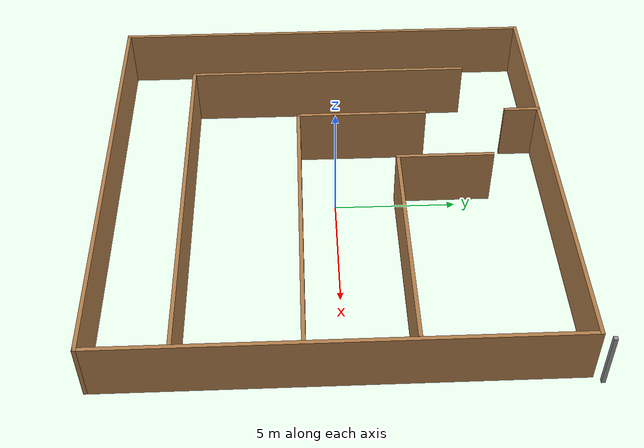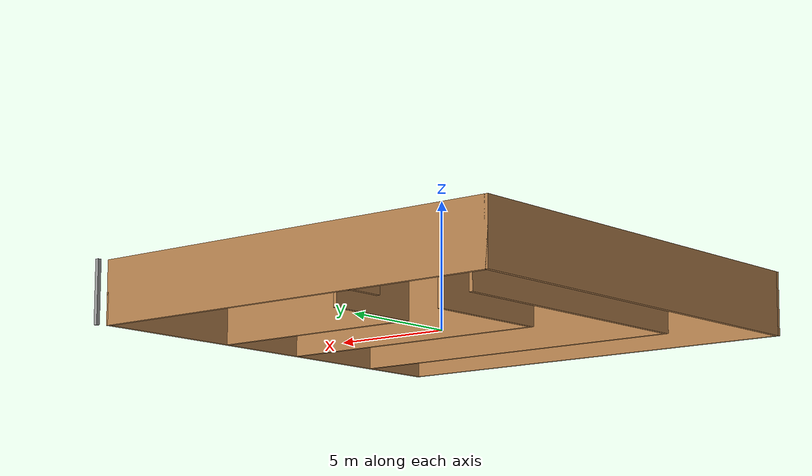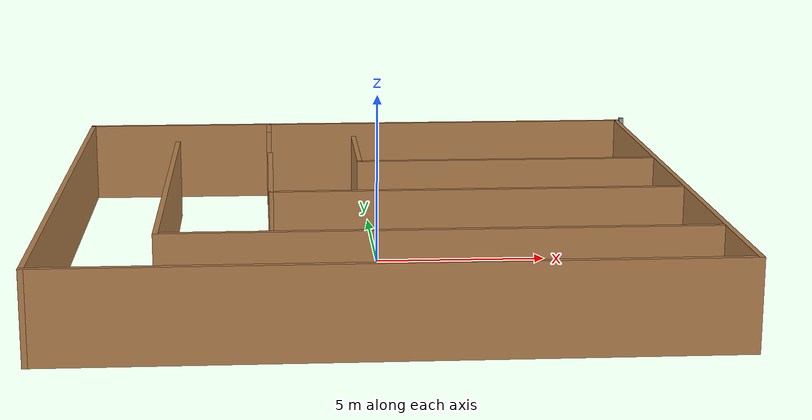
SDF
<?xml version='1.0'?>
<sdf version='1.7'>
  <model name='maze'>
    <link name='Wall_28'>
      <pose>8.87242 -0.195571 0 0 0 -1.5708</pose>
      <self_collide>0</self_collide>
      <enable_wind>0</enable_wind>
      <kinematic>0</kinematic>
      <visual name='Wall_28_Visual'>
        <pose>0 0 1.25 0 -0 0</pose>
        <geometry>
          <box>
            <size>18.15 0.15 2.5</size>
          </box>
        </geometry>
        <material>
          <script>
            <uri>file://media/materials/scripts/gazebo.material</uri>
            <name>Gazebo/Wood</name>
          </script>
          <ambient>1 1 1 1</ambient>
          <shader type='pixel'/>
        </material>
        <meta>
          <layer>0</layer>
        </meta>
        <transparency>0</transparency>
        <cast_shadows>1</cast_shadows>
      </visual>
      <collision name='Wall_28_Collision'>
        <laser_retro>0</laser_retro>
        <max_contacts>10</max_contacts>
        <pose>0 0 1.25 0 -0 0</pose>
        <geometry>
          <box>
            <size>18.15 0.15 2.5</size>
          </box>
        </geometry>
        <surface>
          <friction>
            <ode>
              <mu>1</mu>
              <mu2>1</mu2>
              <fdir1>0 0 0</fdir1>
              <slip1>0</slip1>
              <slip2>0</slip2>
            </ode>
            <torsional>
              <coefficient>1</coefficient>
              <patch_radius>0</patch_radius>
              <surface_radius>0</surface_radius>
              <use_patch_radius>1</use_patch_radius>
              <ode>
                <slip>0</slip>
              </ode>
            </torsional>
          </friction>
          <bounce>
            <restitution_coefficient>0</restitution_coefficient>
            <threshold>1e+06</threshold>
          </bounce>
          <contact>
            <collide_without_contact>0</collide_without_contact>
            <collide_without_contact_bitmask>1</collide_without_contact_bitmask>
            <collide_bitmask>1</collide_bitmask>
            <ode>
              <soft_cfm>0</soft_cfm>
              <soft_erp>0.2</soft_erp>
              <kp>1e+13</kp>
              <kd>1</kd>
              <max_vel>0.01</max_vel>
              <min_depth>0</min_depth>
            </ode>
            <bullet>
              <split_impulse>1</split_impulse>
              <split_impulse_penetration_threshold>-0.01</split_impulse_penetration_threshold>
              <soft_cfm>0</soft_cfm>
              <soft_erp>0.2</soft_erp>
              <kp>1e+13</kp>
              <kd>1</kd>
            </bullet>
          </contact>
        </surface>
      </collision>
    </link>
    <link name='Wall_30'>
      <pose>-0.127585 -9.19557 0 0 -0 3.14159</pose>
      <self_collide>0</self_collide>
      <enable_wind>0</enable_wind>
      <kinematic>0</kinematic>
      <visual name='Wall_30_Visual'>
        <pose>0 0 1.25 0 -0 0</pose>
        <geometry>
          <box>
            <size>18.15 0.15 2.5</size>
          </box>
        </geometry>
        <material>
          <script>
            <uri>file://media/materials/scripts/gazebo.material</uri>
            <name>Gazebo/Wood</name>
          </script>
          <ambient>1 1 1 1</ambient>
          <shader type='pixel'/>
        </material>
        <meta>
          <layer>0</layer>
        </meta>
        <transparency>0</transparency>
        <cast_shadows>1</cast_shadows>
      </visual>
      <collision name='Wall_30_Collision'>
        <laser_retro>0</laser_retro>
        <max_contacts>10</max_contacts>
        <pose>0 0 1.25 0 -0 0</pose>
        <geometry>
          <box>
            <size>18.15 0.15 2.5</size>
          </box>
        </geometry>
        <surface>
          <friction>
            <ode>
              <mu>1</mu>
              <mu2>1</mu2>
              <fdir1>0 0 0</fdir1>
              <slip1>0</slip1>
              <slip2>0</slip2>
            </ode>
            <torsional>
              <coefficient>1</coefficient>
              <patch_radius>0</patch_radius>
              <surface_radius>0</surface_radius>
              <use_patch_radius>1</use_patch_radius>
              <ode>
                <slip>0</slip>
              </ode>
            </torsional>
          </friction>
          <bounce>
            <restitution_coefficient>0</restitution_coefficient>
            <threshold>1e+06</threshold>
          </bounce>
          <contact>
            <collide_without_contact>0</collide_without_contact>
            <collide_without_contact_bitmask>1</collide_without_contact_bitmask>
            <collide_bitmask>1</collide_bitmask>
            <ode>
              <soft_cfm>0</soft_cfm>
              <soft_erp>0.2</soft_erp>
              <kp>1e+13</kp>
              <kd>1</kd>
              <max_vel>0.01</max_vel>
              <min_depth>0</min_depth>
            </ode>
            <bullet>
              <split_impulse>1</split_impulse>
              <split_impulse_penetration_threshold>-0.01</split_impulse_penetration_threshold>
              <soft_cfm>0</soft_cfm>
              <soft_erp>0.2</soft_erp>
              <kp>1e+13</kp>
              <kd>1</kd>
            </bullet>
          </contact>
        </surface>
      </collision>
    </link>
    <link name='Wall_31'>
      <pose>-9.12758 -0.195571 0 0 -0 1.5708</pose>
      <self_collide>0</self_collide>
      <enable_wind>0</enable_wind>
      <kinematic>0</kinematic>
      <visual name='Wall_31_Visual'>
        <pose>0 0 1.25 0 -0 0</pose>
        <geometry>
          <box>
            <size>18.15 0.15 2.5</size>
          </box>
        </geometry>
        <material>
          <script>
            <uri>file://media/materials/scripts/gazebo.material</uri>
            <name>Gazebo/Wood</name>
          </script>
          <ambient>1 1 1 1</ambient>
          <shader type='pixel'/>
        </material>
        <meta>
          <layer>0</layer>
        </meta>
        <transparency>0</transparency>
        <cast_shadows>1</cast_shadows>
      </visual>
      <collision name='Wall_31_Collision'>
        <laser_retro>0</laser_retro>
        <max_contacts>10</max_contacts>
        <pose>0 0 1.25 0 -0 0</pose>
        <geometry>
          <box>
            <size>18.15 0.15 2.5</size>
          </box>
        </geometry>
        <surface>
          <friction>
            <ode>
              <mu>1</mu>
              <mu2>1</mu2>
              <fdir1>0 0 0</fdir1>
              <slip1>0</slip1>
              <slip2>0</slip2>
            </ode>
            <torsional>
              <coefficient>1</coefficient>
              <patch_radius>0</patch_radius>
              <surface_radius>0</surface_radius>
              <use_patch_radius>1</use_patch_radius>
              <ode>
                <slip>0</slip>
              </ode>
            </torsional>
          </friction>
          <bounce>
            <restitution_coefficient>0</restitution_coefficient>
            <threshold>1e+06</threshold>
          </bounce>
          <contact>
            <collide_without_contact>0</collide_without_contact>
            <collide_without_contact_bitmask>1</collide_without_contact_bitmask>
            <collide_bitmask>1</collide_bitmask>
            <ode>
              <soft_cfm>0</soft_cfm>
              <soft_erp>0.2</soft_erp>
              <kp>1e+13</kp>
              <kd>1</kd>
              <max_vel>0.01</max_vel>
              <min_depth>0</min_depth>
            </ode>
            <bullet>
              <split_impulse>1</split_impulse>
              <split_impulse_penetration_threshold>-0.01</split_impulse_penetration_threshold>
              <soft_cfm>0</soft_cfm>
              <soft_erp>0.2</soft_erp>
              <kp>1e+13</kp>
              <kd>1</kd>
            </bullet>
          </contact>
        </surface>
      </collision>
    </link>
    <link name='Wall_34'>
      <pose>9.12759 9.19557 0 0 -0 0</pose>
      <self_collide>0</self_collide>
      <enable_wind>0</enable_wind>
      <kinematic>0</kinematic>
      <visual name='Wall_34_Visual'>
        <pose>0 0 1.25 0 -0 0</pose>
        <geometry>
          <box>
            <size>0.15 0.15 2.5</size>
          </box>
        </geometry>
        <material>
          <script>
            <uri>file://media/materials/scripts/gazebo.material</uri>
            <name>Gazebo/Grey</name>
          </script>
          <ambient>1 1 1 1</ambient>
          <shader type='pixel'/>
        </material>
        <meta>
          <layer>0</layer>
        </meta>
        <transparency>0</transparency>
        <cast_shadows>1</cast_shadows>
      </visual>
      <collision name='Wall_34_Collision'>
        <laser_retro>0</laser_retro>
        <max_contacts>10</max_contacts>
        <pose>0 0 1.25 0 -0 0</pose>
        <geometry>
          <box>
            <size>0.15 0.15 2.5</size>
          </box>
        </geometry>
        <surface>
          <friction>
            <ode>
              <mu>1</mu>
              <mu2>1</mu2>
              <fdir1>0 0 0</fdir1>
              <slip1>0</slip1>
              <slip2>0</slip2>
            </ode>
            <torsional>
              <coefficient>1</coefficient>
              <patch_radius>0</patch_radius>
              <surface_radius>0</surface_radius>
              <use_patch_radius>1</use_patch_radius>
              <ode>
                <slip>0</slip>
              </ode>
            </torsional>
          </friction>
          <bounce>
            <restitution_coefficient>0</restitution_coefficient>
            <threshold>1e+06</threshold>
          </bounce>
          <contact>
            <collide_without_contact>0</collide_without_contact>
            <collide_without_contact_bitmask>1</collide_without_contact_bitmask>
            <collide_bitmask>1</collide_bitmask>
            <ode>
              <soft_cfm>0</soft_cfm>
              <soft_erp>0.2</soft_erp>
              <kp>1e+13</kp>
              <kd>1</kd>
              <max_vel>0.01</max_vel>
              <min_depth>0</min_depth>
            </ode>
            <bullet>
              <split_impulse>1</split_impulse>
              <split_impulse_penetration_threshold>-0.01</split_impulse_penetration_threshold>
              <soft_cfm>0</soft_cfm>
              <soft_erp>0.2</soft_erp>
              <kp>1e+13</kp>
              <kd>1</kd>
            </bullet>
          </contact>
        </surface>
      </collision>
    </link>
    <link name='Wall_39'>
      <pose>-0.127585 8.80443 0 0 -0 0</pose>
      <self_collide>0</self_collide>
      <enable_wind>0</enable_wind>
      <kinematic>0</kinematic>
      <visual name='Wall_39_Visual'>
        <pose>0 0 1.25 0 -0 0</pose>
        <geometry>
          <box>
            <size>18.15 0.15 2.5</size>
          </box>
        </geometry>
        <material>
          <script>
            <uri>file://media/materials/scripts/gazebo.material</uri>
            <name>Gazebo/Wood</name>
          </script>
          <ambient>1 1 1 1</ambient>
          <shader type='pixel'/>
        </material>
        <meta>
          <layer>0</layer>
        </meta>
        <transparency>0</transparency>
        <cast_shadows>1</cast_shadows>
      </visual>
      <collision name='Wall_39_Collision'>
        <laser_retro>0</laser_retro>
        <max_contacts>10</max_contacts>
        <pose>0 0 1.25 0 -0 0</pose>
        <geometry>
          <box>
            <size>18.15 0.15 2.5</size>
          </box>
        </geometry>
        <surface>
          <friction>
            <ode>
              <mu>1</mu>
              <mu2>1</mu2>
              <fdir1>0 0 0</fdir1>
              <slip1>0</slip1>
              <slip2>0</slip2>
            </ode>
            <torsional>
              <coefficient>1</coefficient>
              <patch_radius>0</patch_radius>
              <surface_radius>0</surface_radius>
              <use_patch_radius>1</use_patch_radius>
              <ode>
                <slip>0</slip>
              </ode>
            </torsional>
          </friction>
          <bounce>
            <restitution_coefficient>0</restitution_coefficient>
            <threshold>1e+06</threshold>
          </bounce>
          <contact>
            <collide_without_contact>0</collide_without_contact>
            <collide_without_contact_bitmask>1</collide_without_contact_bitmask>
            <collide_bitmask>1</collide_bitmask>
            <ode>
              <soft_cfm>0</soft_cfm>
              <soft_erp>0.2</soft_erp>
              <kp>1e+13</kp>
              <kd>1</kd>
              <max_vel>0.01</max_vel>
              <min_depth>0</min_depth>
            </ode>
            <bullet>
              <split_impulse>1</split_impulse>
              <split_impulse_penetration_threshold>-0.01</split_impulse_penetration_threshold>
              <soft_cfm>0</soft_cfm>
              <soft_erp>0.2</soft_erp>
              <kp>1e+13</kp>
              <kd>1</kd>
            </bullet>
          </contact>
        </surface>
      </collision>
    </link>
    <link name='Wall_42'>
      <pose>-0.381293 4.4894 0 0 0 -1.5708</pose>
      <self_collide>0</self_collide>
      <enable_wind>0</enable_wind>
      <kinematic>0</kinematic>
      <visual name='Wall_42_Visual'>
        <pose>0 0 1.25 0 -0 0</pose>
        <geometry>
          <box>
            <size>4 0.15 2.5</size>
          </box>
        </geometry>
        <material>
          <script>
            <uri>file://media/materials/scripts/gazebo.material</uri>
            <name>Gazebo/Wood</name>
          </script>
          <ambient>1 1 1 1</ambient>
          <shader type='pixel'/>
        </material>
        <meta>
          <layer>0</layer>
        </meta>
        <transparency>0</transparency>
        <cast_shadows>1</cast_shadows>
      </visual>
      <collision name='Wall_42_Collision'>
        <laser_retro>0</laser_retro>
        <max_contacts>10</max_contacts>
        <pose>0 0 1.25 0 -0 0</pose>
        <geometry>
          <box>
            <size>4 0.15 2.5</size>
          </box>
        </geometry>
        <surface>
          <friction>
            <ode>
              <mu>1</mu>
              <mu2>1</mu2>
              <fdir1>0 0 0</fdir1>
              <slip1>0</slip1>
              <slip2>0</slip2>
            </ode>
            <torsional>
              <coefficient>1</coefficient>
              <patch_radius>0</patch_radius>
              <surface_radius>0</surface_radius>
              <use_patch_radius>1</use_patch_radius>
              <ode>
                <slip>0</slip>
              </ode>
            </torsional>
          </friction>
          <bounce>
            <restitution_coefficient>0</restitution_coefficient>
            <threshold>1e+06</threshold>
          </bounce>
          <contact>
            <collide_without_contact>0</collide_without_contact>
            <collide_without_contact_bitmask>1</collide_without_contact_bitmask>
            <collide_bitmask>1</collide_bitmask>
            <ode>
              <soft_cfm>0</soft_cfm>
              <soft_erp>0.2</soft_erp>
              <kp>1e+13</kp>
              <kd>1</kd>
              <max_vel>0.01</max_vel>
              <min_depth>0</min_depth>
            </ode>
            <bullet>
              <split_impulse>1</split_impulse>
              <split_impulse_penetration_threshold>-0.01</split_impulse_penetration_threshold>
              <soft_cfm>0</soft_cfm>
              <soft_erp>0.2</soft_erp>
              <kp>1e+13</kp>
              <kd>1</kd>
            </bullet>
          </contact>
        </surface>
      </collision>
    </link>
    <link name='Wall_43'>
      <pose>4.16871 2.5644 0 0 -0 0</pose>
      <self_collide>0</self_collide>
      <enable_wind>0</enable_wind>
      <kinematic>0</kinematic>
      <visual name='Wall_43_Visual'>
        <pose>0 0 1.25 0 -0 0</pose>
        <geometry>
          <box>
            <size>9.25 0.15 2.5</size>
          </box>
        </geometry>
        <material>
          <script>
            <uri>file://media/materials/scripts/gazebo.material</uri>
            <name>Gazebo/Wood</name>
          </script>
          <ambient>1 1 1 1</ambient>
          <shader type='pixel'/>
        </material>
        <meta>
          <layer>0</layer>
        </meta>
        <transparency>0</transparency>
        <cast_shadows>1</cast_shadows>
      </visual>
      <collision name='Wall_43_Collision'>
        <laser_retro>0</laser_retro>
        <max_contacts>10</max_contacts>
        <pose>0 0 1.25 0 -0 0</pose>
        <geometry>
          <box>
            <size>9.25 0.15 2.5</size>
          </box>
        </geometry>
        <surface>
          <friction>
            <ode>
              <mu>1</mu>
              <mu2>1</mu2>
              <fdir1>0 0 0</fdir1>
              <slip1>0</slip1>
              <slip2>0</slip2>
            </ode>
            <torsional>
              <coefficient>1</coefficient>
              <patch_radius>0</patch_radius>
              <surface_radius>0</surface_radius>
              <use_patch_radius>1</use_patch_radius>
              <ode>
                <slip>0</slip>
              </ode>
            </torsional>
          </friction>
          <bounce>
            <restitution_coefficient>0</restitution_coefficient>
            <threshold>1e+06</threshold>
          </bounce>
          <contact>
            <collide_without_contact>0</collide_without_contact>
            <collide_without_contact_bitmask>1</collide_without_contact_bitmask>
            <collide_bitmask>1</collide_bitmask>
            <ode>
              <soft_cfm>0</soft_cfm>
              <soft_erp>0.2</soft_erp>
              <kp>1e+13</kp>
              <kd>1</kd>
              <max_vel>0.01</max_vel>
              <min_depth>0</min_depth>
            </ode>
            <bullet>
              <split_impulse>1</split_impulse>
              <split_impulse_penetration_threshold>-0.01</split_impulse_penetration_threshold>
              <soft_cfm>0</soft_cfm>
              <soft_erp>0.2</soft_erp>
              <kp>1e+13</kp>
              <kd>1</kd>
            </bullet>
          </contact>
        </surface>
      </collision>
    </link>
    <link name='Wall_45'>
      <pose>-3.13227 1.23116 0 0 0 -1.5708</pose>
      <self_collide>0</self_collide>
      <enable_wind>0</enable_wind>
      <kinematic>0</kinematic>
      <visual name='Wall_45_Visual'>
        <pose>0 0 1.25 0 -0 0</pose>
        <geometry>
          <box>
            <size>5.5 0.15 2.5</size>
          </box>
        </geometry>
        <material>
          <script>
            <uri>file://media/materials/scripts/gazebo.material</uri>
            <name>Gazebo/Wood</name>
          </script>
          <ambient>1 1 1 1</ambient>
          <shader type='pixel'/>
        </material>
        <meta>
          <layer>0</layer>
        </meta>
        <transparency>0</transparency>
        <cast_shadows>1</cast_shadows>
      </visual>
      <collision name='Wall_45_Collision'>
        <laser_retro>0</laser_retro>
        <max_contacts>10</max_contacts>
        <pose>0 0 1.25 0 -0 0</pose>
        <geometry>
          <box>
            <size>5.5 0.15 2.5</size>
          </box>
        </geometry>
        <surface>
          <friction>
            <ode>
              <mu>1</mu>
              <mu2>1</mu2>
              <fdir1>0 0 0</fdir1>
              <slip1>0</slip1>
              <slip2>0</slip2>
            </ode>
            <torsional>
              <coefficient>1</coefficient>
              <patch_radius>0</patch_radius>
              <surface_radius>0</surface_radius>
              <use_patch_radius>1</use_patch_radius>
              <ode>
                <slip>0</slip>
              </ode>
            </torsional>
          </friction>
          <bounce>
            <restitution_coefficient>0</restitution_coefficient>
            <threshold>1e+06</threshold>
          </bounce>
          <contact>
            <collide_without_contact>0</collide_without_contact>
            <collide_without_contact_bitmask>1</collide_without_contact_bitmask>
            <collide_bitmask>1</collide_bitmask>
            <ode>
              <soft_cfm>0</soft_cfm>
              <soft_erp>0.2</soft_erp>
              <kp>1e+13</kp>
              <kd>1</kd>
              <max_vel>0.01</max_vel>
              <min_depth>0</min_depth>
            </ode>
            <bullet>
              <split_impulse>1</split_impulse>
              <split_impulse_penetration_threshold>-0.01</split_impulse_penetration_threshold>
              <soft_cfm>0</soft_cfm>
              <soft_erp>0.2</soft_erp>
              <kp>1e+13</kp>
              <kd>1</kd>
            </bullet>
          </contact>
        </surface>
      </collision>
    </link>
    <link name='Wall_46'>
      <pose>2.79273 -1.44384 0 0 -0 0</pose>
      <self_collide>0</self_collide>
      <enable_wind>0</enable_wind>
      <kinematic>0</kinematic>
      <visual name='Wall_46_Visual'>
        <pose>0 0 1.25 0 -0 0</pose>
        <geometry>
          <box>
            <size>12 0.15 2.5</size>
          </box>
        </geometry>
        <material>
          <script>
            <uri>file://media/materials/scripts/gazebo.material</uri>
            <name>Gazebo/Wood</name>
          </script>
          <ambient>1 1 1 1</ambient>
          <shader type='pixel'/>
        </material>
        <meta>
          <layer>0</layer>
        </meta>
        <transparency>0</transparency>
        <cast_shadows>1</cast_shadows>
      </visual>
      <collision name='Wall_46_Collision'>
        <laser_retro>0</laser_retro>
        <max_contacts>10</max_contacts>
        <pose>0 0 1.25 0 -0 0</pose>
        <geometry>
          <box>
            <size>12 0.15 2.5</size>
          </box>
        </geometry>
        <surface>
          <friction>
            <ode>
              <mu>1</mu>
              <mu2>1</mu2>
              <fdir1>0 0 0</fdir1>
              <slip1>0</slip1>
              <slip2>0</slip2>
            </ode>
            <torsional>
              <coefficient>1</coefficient>
              <patch_radius>0</patch_radius>
              <surface_radius>0</surface_radius>
              <use_patch_radius>1</use_patch_radius>
              <ode>
                <slip>0</slip>
              </ode>
            </torsional>
          </friction>
          <bounce>
            <restitution_coefficient>0</restitution_coefficient>
            <threshold>1e+06</threshold>
          </bounce>
          <contact>
            <collide_without_contact>0</collide_without_contact>
            <collide_without_contact_bitmask>1</collide_without_contact_bitmask>
            <collide_bitmask>1</collide_bitmask>
            <ode>
              <soft_cfm>0</soft_cfm>
              <soft_erp>0.2</soft_erp>
              <kp>1e+13</kp>
              <kd>1</kd>
              <max_vel>0.01</max_vel>
              <min_depth>0</min_depth>
            </ode>
            <bullet>
              <split_impulse>1</split_impulse>
              <split_impulse_penetration_threshold>-0.01</split_impulse_penetration_threshold>
              <soft_cfm>0</soft_cfm>
              <soft_erp>0.2</soft_erp>
              <kp>1e+13</kp>
              <kd>1</kd>
            </bullet>
          </contact>
        </surface>
      </collision>
    </link>
    <link name='Wall_52'>
      <pose>-6.12599 -0.076976 0 0 0 -1.5708</pose>
      <self_collide>0</self_collide>
      <enable_wind>0</enable_wind>
      <kinematic>0</kinematic>
      <visual name='Wall_52_Visual'>
        <pose>0 0 1.25 0 -0 0</pose>
        <geometry>
          <box>
            <size>12 0.15 2.5</size>
          </box>
        </geometry>
        <material>
          <script>
            <uri>file://media/materials/scripts/gazebo.material</uri>
            <name>Gazebo/Wood</name>
          </script>
          <ambient>1 1 1 1</ambient>
          <shader type='pixel'/>
        </material>
        <meta>
          <layer>0</layer>
        </meta>
        <transparency>0</transparency>
        <cast_shadows>1</cast_shadows>
      </visual>
      <collision name='Wall_52_Collision'>
        <laser_retro>0</laser_retro>
        <max_contacts>10</max_contacts>
        <pose>0 0 1.25 0 -0 0</pose>
        <geometry>
          <box>
            <size>12 0.15 2.5</size>
          </box>
        </geometry>
        <surface>
          <friction>
            <ode>
              <mu>1</mu>
              <mu2>1</mu2>
              <fdir1>0 0 0</fdir1>
              <slip1>0</slip1>
              <slip2>0</slip2>
            </ode>
            <torsional>
              <coefficient>1</coefficient>
              <patch_radius>0</patch_radius>
              <surface_radius>0</surface_radius>
              <use_patch_radius>1</use_patch_radius>
              <ode>
                <slip>0</slip>
              </ode>
            </torsional>
          </friction>
          <bounce>
            <restitution_coefficient>0</restitution_coefficient>
            <threshold>1e+06</threshold>
          </bounce>
          <contact>
            <collide_without_contact>0</collide_without_contact>
            <collide_without_contact_bitmask>1</collide_without_contact_bitmask>
            <collide_bitmask>1</collide_bitmask>
            <ode>
              <soft_cfm>0</soft_cfm>
              <soft_erp>0.2</soft_erp>
              <kp>1e+13</kp>
              <kd>1</kd>
              <max_vel>0.01</max_vel>
              <min_depth>0</min_depth>
            </ode>
            <bullet>
              <split_impulse>1</split_impulse>
              <split_impulse_penetration_threshold>-0.01</split_impulse_penetration_threshold>
              <soft_cfm>0</soft_cfm>
              <soft_erp>0.2</soft_erp>
              <kp>1e+13</kp>
              <kd>1</kd>
            </bullet>
          </contact>
        </surface>
      </collision>
    </link>
    <link name='Wall_53'>
      <pose>1.29902 -6.00198 0 0 -0 0</pose>
      <self_collide>0</self_collide>
      <enable_wind>0</enable_wind>
      <kinematic>0</kinematic>
      <visual name='Wall_53_Visual'>
        <pose>0 0 1.25 0 -0 0</pose>
        <geometry>
          <box>
            <size>15 0.15 2.5</size>
          </box>
        </geometry>
        <material>
          <script>
            <uri>file://media/materials/scripts/gazebo.material</uri>
            <name>Gazebo/Wood</name>
          </script>
          <ambient>1 1 1 1</ambient>
          <shader type='pixel'/>
        </material>
        <meta>
          <layer>0</layer>
        </meta>
        <transparency>0</transparency>
        <cast_shadows>1</cast_shadows>
      </visual>
      <collision name='Wall_53_Collision'>
        <laser_retro>0</laser_retro>
        <max_contacts>10</max_contacts>
        <pose>0 0 1.25 0 -0 0</pose>
        <geometry>
          <box>
            <size>15 0.15 2.5</size>
          </box>
        </geometry>
        <surface>
          <friction>
            <ode>
              <mu>1</mu>
              <mu2>1</mu2>
              <fdir1>0 0 0</fdir1>
              <slip1>0</slip1>
              <slip2>0</slip2>
            </ode>
            <torsional>
              <coefficient>1</coefficient>
              <patch_radius>0</patch_radius>
              <surface_radius>0</surface_radius>
              <use_patch_radius>1</use_patch_radius>
              <ode>
                <slip>0</slip>
              </ode>
            </torsional>
          </friction>
          <bounce>
            <restitution_coefficient>0</restitution_coefficient>
            <threshold>1e+06</threshold>
          </bounce>
          <contact>
            <collide_without_contact>0</collide_without_contact>
            <collide_without_contact_bitmask>1</collide_without_contact_bitmask>
            <collide_bitmask>1</collide_bitmask>
            <ode>
              <soft_cfm>0</soft_cfm>
              <soft_erp>0.2</soft_erp>
              <kp>1e+13</kp>
              <kd>1</kd>
              <max_vel>0.01</max_vel>
              <min_depth>0</min_depth>
            </ode>
            <bullet>
              <split_impulse>1</split_impulse>
              <split_impulse_penetration_threshold>-0.01</split_impulse_penetration_threshold>
              <soft_cfm>0</soft_cfm>
              <soft_erp>0.2</soft_erp>
              <kp>1e+13</kp>
              <kd>1</kd>
            </bullet>
          </contact>
        </surface>
      </collision>
    </link>
    <link name='Wall_55'>
      <pose>-3.17273 8.09816 0 0 -0 1.5708</pose>
      <self_collide>0</self_collide>
      <enable_wind>0</enable_wind>
      <kinematic>0</kinematic>
      <visual name='Wall_55_Visual'>
        <pose>0 0 1.25 0 -0 0</pose>
        <geometry>
          <box>
            <size>1.5 0.15 2.5</size>
          </box>
        </geometry>
        <material>
          <script>
            <uri>file://media/materials/scripts/gazebo.material</uri>
            <name>Gazebo/Wood</name>
          </script>
          <ambient>1 1 1 1</ambient>
          <shader type='pixel'/>
        </material>
        <meta>
          <layer>0</layer>
        </meta>
        <transparency>0</transparency>
        <cast_shadows>1</cast_shadows>
      </visual>
      <collision name='Wall_55_Collision'>
        <laser_retro>0</laser_retro>
        <max_contacts>10</max_contacts>
        <pose>0 0 1.25 0 -0 0</pose>
        <geometry>
          <box>
            <size>1.5 0.15 2.5</size>
          </box>
        </geometry>
        <surface>
          <friction>
            <ode>
              <mu>1</mu>
              <mu2>1</mu2>
              <fdir1>0 0 0</fdir1>
              <slip1>0</slip1>
              <slip2>0</slip2>
            </ode>
            <torsional>
              <coefficient>1</coefficient>
              <patch_radius>0</patch_radius>
              <surface_radius>0</surface_radius>
              <use_patch_radius>1</use_patch_radius>
              <ode>
                <slip>0</slip>
              </ode>
            </torsional>
          </friction>
          <bounce>
            <restitution_coefficient>0</restitution_coefficient>
            <threshold>1e+06</threshold>
          </bounce>
          <contact>
            <collide_without_contact>0</collide_without_contact>
            <collide_without_contact_bitmask>1</collide_without_contact_bitmask>
            <collide_bitmask>1</collide_bitmask>
            <ode>
              <soft_cfm>0</soft_cfm>
              <soft_erp>0.2</soft_erp>
              <kp>1e+13</kp>
              <kd>1</kd>
              <max_vel>0.01</max_vel>
              <min_depth>0</min_depth>
            </ode>
            <bullet>
              <split_impulse>1</split_impulse>
              <split_impulse_penetration_threshold>-0.01</split_impulse_penetration_threshold>
              <soft_cfm>0</soft_cfm>
              <soft_erp>0.2</soft_erp>
              <kp>1e+13</kp>
              <kd>1</kd>
            </bullet>
          </contact>
        </surface>
      </collision>
    </link>
    <static>1</static>
    <allow_auto_disable>1</allow_auto_disable>
  </model>
</sdf>
